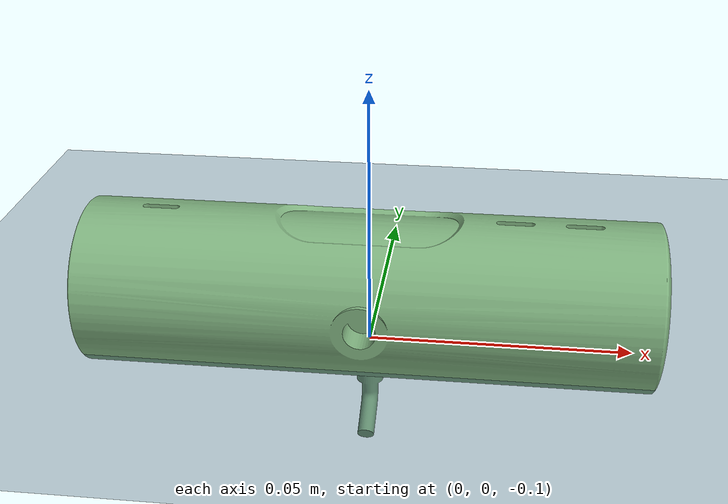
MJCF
<mujoco model="right_shadow_hand scene">
  <statistic extent="0.3" center="0.3 0 0"/>
  <compiler angle="radian" meshdir="assets" autolimits="true"/>

  <visual>
    <rgba haze="0.15 0.25 0.35 1"/>
    <quality shadowsize="8192"/>
    <global azimuth="220" elevation="-30"/>
  </visual>

  <asset>
    <texture type="skybox" builtin="gradient" rgb1="0.3 0.5 0.7" rgb2="0 0 0" width="512" height="3072"/>
    <texture type="2d" name="groundplane" builtin="checker" mark="edge" rgb1="0.2 0.3 0.4" rgb2="0.1 0.2 0.3"
      markrgb="0.8 0.8 0.8" width="300" height="300"/>
    <material name="groundplane" texture="groundplane" texuniform="true" texrepeat="5 5" reflectance="0.2"/>
    <mesh file="camera.obj"/>
  </asset>

  <worldbody>
    <light pos="0 0 1"/>
    <light pos="0.3 0 1.5" dir="0 0 -1" directional="true"/>
    <geom name="floor" pos="0 0 -0.1" size="0 0 0.05" type="plane" material="groundplane"/>
    <body name="object" pos="0 0 -0.09">
      <freejoint/>
      <geom type="mesh" mesh="camera" size="0.03 0.04 0.02" rgba="0.5 0.7 0.5 1" condim="6" priority="1"
        friction="0.5 0.01 0.003"/>
    </body>
  </worldbody>
</mujoco>
